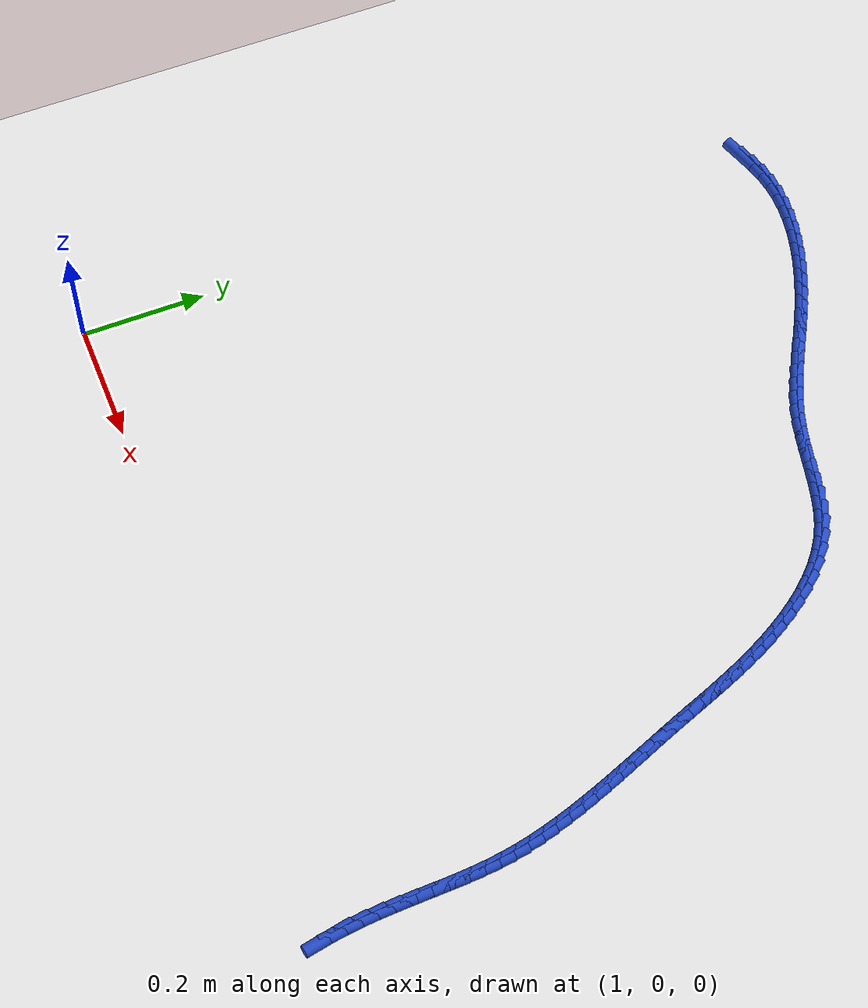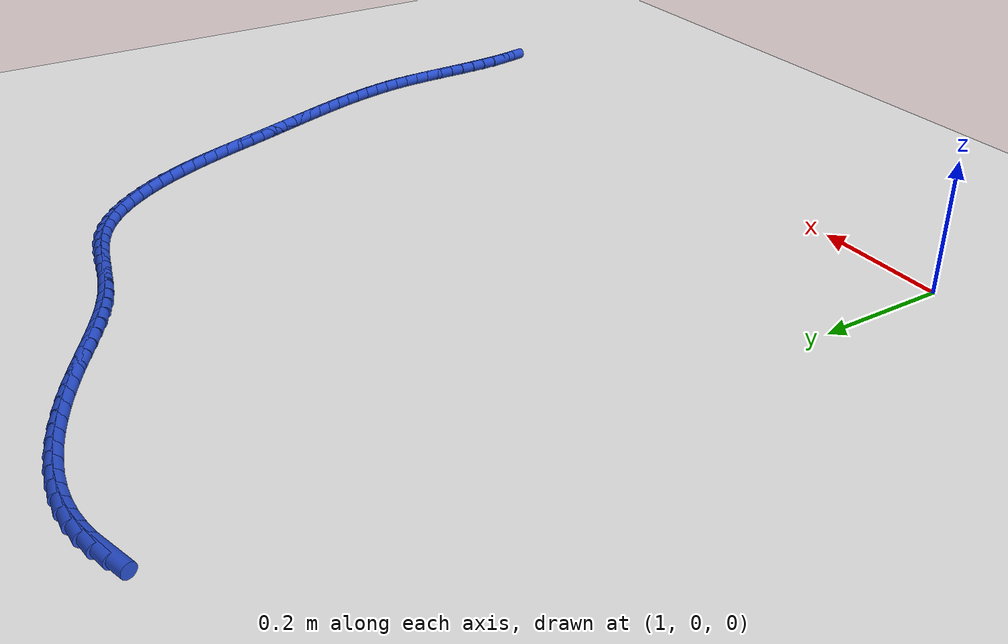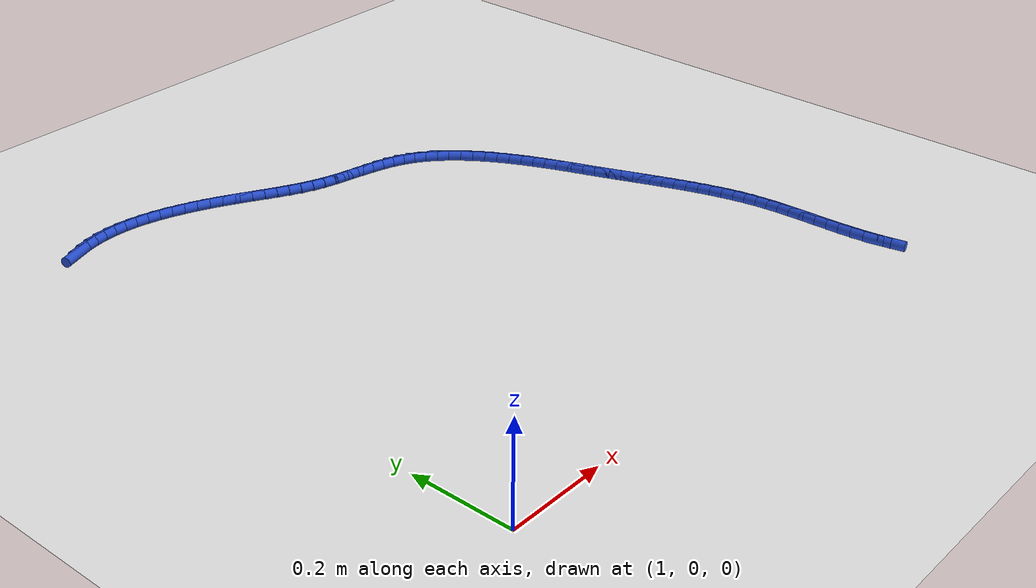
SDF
<sdf version="1.6">
 <world name="default">
  <model name="ground_plane">
   <static>1</static>
   <link name="link">
    <collision name="collision">
     <geometry><plane><normal>0 0 1</normal><size>100 100</size></plane></geometry>
     <surface><friction><ode><mu>100</mu><mu2>50</mu2></ode></friction></surface>
    </collision>
    <visual name="visual">
     <cast_shadows>0</cast_shadows>
     <geometry><plane><normal>0 0 1</normal><size>100 100</size></plane></geometry>
     <material>
      <script><uri>file://media/materials/scripts/gazebo.material</uri><name>Gazebo/WhiteGlow</name></script>
     </material>
    </visual>
   </link>
  </model>
  <model name="line">
   <link name="link_68">
    <pose>1.0712664505683156 1.1156663409639707 0.01 0 1.57 0.3250798193167384</pose>
    <collision name="collision">
     <geometry><cylinder><radius>0.01</radius><length>0.08</length></cylinder></geometry>
    </collision>
    <visual name="visual">
     <material>
      <script><name>Gazebo/Blue</name><uri>file://media/materials/scripts/gazebo.material</uri></script>
     </material>
     <geometry><cylinder><radius>0.01</radius><length>0.08</length></cylinder></geometry>
    </visual>
   </link>
   <link name="link_69">
    <pose>1.0942441320100968 1.1234106615126367 0.01 0 1.57 0.24602648844768754</pose>
    <collision name="collision">
     <geometry><cylinder><radius>0.01</radius><length>0.08</length></cylinder></geometry>
    </collision>
    <visual name="visual">
     <material>
      <script><name>Gazebo/Blue</name><uri>file://media/materials/scripts/gazebo.material</uri></script>
     </material>
     <geometry><cylinder><radius>0.01</radius><length>0.08</length></cylinder></geometry>
    </visual>
   </link>
   <link name="link_70">
    <pose>1.1175309115972816 1.1292582887191789 0.01 0 1.57 0.15348852929266052</pose>
    <collision name="collision">
     <geometry><cylinder><radius>0.01</radius><length>0.08</length></cylinder></geometry>
    </collision>
    <visual name="visual">
     <material>
      <script><name>Gazebo/Blue</name><uri>file://media/materials/scripts/gazebo.material</uri></script>
     </material>
     <geometry><cylinder><radius>0.01</radius><length>0.08</length></cylinder></geometry>
    </visual>
   </link>
   <link name="link_71">
    <pose>1.1411621309180935 1.132914164269768 0.01 0 1.57 0.05758001351447266</pose>
    <collision name="collision">
     <geometry><cylinder><radius>0.01</radius><length>0.08</length></cylinder></geometry>
    </collision>
    <visual name="visual">
     <material>
      <script><name>Gazebo/Blue</name><uri>file://media/materials/scripts/gazebo.material</uri></script>
     </material>
     <geometry><cylinder><radius>0.01</radius><length>0.08</length></cylinder></geometry>
    </visual>
   </link>
   <link name="link_72">
    <pose>1.1651188755700714 1.1342951204554188 0.01 0 1.57 -0.030110901097796038</pose>
    <collision name="collision">
     <geometry><cylinder><radius>0.01</radius><length>0.08</length></cylinder></geometry>
    </collision>
    <visual name="visual">
     <material>
      <script><name>Gazebo/Blue</name><uri>file://media/materials/scripts/gazebo.material</uri></script>
     </material>
     <geometry><cylinder><radius>0.01</radius><length>0.08</length></cylinder></geometry>
    </visual>
   </link>
   <link name="link_73">
    <pose>1.1893186694531075 1.1335662225528327 0.01 0 1.57 -0.10876103123228287</pose>
    <collision name="collision">
     <geometry><cylinder><radius>0.01</radius><length>0.08</length></cylinder></geometry>
    </collision>
    <visual name="visual">
     <material>
      <script><name>Gazebo/Blue</name><uri>file://media/materials/scripts/gazebo.material</uri></script>
     </material>
     <geometry><cylinder><radius>0.01</radius><length>0.08</length></cylinder></geometry>
    </visual>
   </link>
   <link name="link_74">
    <pose>1.2136754192585035 1.1309066624357098 0.01 0 1.57 -0.17865040572887414</pose>
    <collision name="collision">
     <geometry><cylinder><radius>0.01</radius><length>0.08</length></cylinder></geometry>
    </collision>
    <visual name="visual">
     <material>
      <script><name>Gazebo/Blue</name><uri>file://media/materials/scripts/gazebo.material</uri></script>
     </material>
     <geometry><cylinder><radius>0.01</radius><length>0.08</length></cylinder></geometry>
    </visual>
   </link>
   <link name="link_75">
    <pose>1.2381030316775643 1.1264956319777528 0.01 0 1.57 -0.24035519986137915</pose>
    <collision name="collision">
     <geometry><cylinder><radius>0.01</radius><length>0.08</length></cylinder></geometry>
    </collision>
    <visual name="visual">
     <material>
      <script><name>Gazebo/Blue</name><uri>file://media/materials/scripts/gazebo.material</uri></script>
     </material>
     <geometry><cylinder><radius>0.01</radius><length>0.08</length></cylinder></geometry>
    </visual>
   </link>
   <link name="link_76">
    <pose>1.262515413401593 1.1205123230526615 0.01 0 1.57 -0.29458897683144164</pose>
    <collision name="collision">
     <geometry><cylinder><radius>0.01</radius><length>0.08</length></cylinder></geometry>
    </collision>
    <visual name="visual">
     <material>
      <script><name>Gazebo/Blue</name><uri>file://media/materials/scripts/gazebo.material</uri></script>
     </material>
     <geometry><cylinder><radius>0.01</radius><length>0.08</length></cylinder></geometry>
    </visual>
   </link>
   <link name="link_77">
    <pose>1.2868264711218944 1.1131359275341384 0.01 0 1.57 -0.3420936673481005</pose>
    <collision name="collision">
     <geometry><cylinder><radius>0.01</radius><length>0.08</length></cylinder></geometry>
    </collision>
    <visual name="visual">
     <material>
      <script><name>Gazebo/Blue</name><uri>file://media/materials/scripts/gazebo.material</uri></script>
     </material>
     <geometry><cylinder><radius>0.01</radius><length>0.08</length></cylinder></geometry>
    </visual>
   </link>
   <link name="link_78">
    <pose>1.310950111529771 1.1045456372958835 0.01 0 1.57 -0.3835728216554698</pose>
    <collision name="collision">
     <geometry><cylinder><radius>0.01</radius><length>0.08</length></cylinder></geometry>
    </collision>
    <visual name="visual">
     <material>
      <script><name>Gazebo/Blue</name><uri>file://media/materials/scripts/gazebo.material</uri></script>
     </material>
     <geometry><cylinder><radius>0.01</radius><length>0.08</length></cylinder></geometry>
    </visual>
   </link>
   <link name="link_79">
    <pose>1.3348002413165274 1.0949206442115993 0.01 0 1.57 -0.41965496621604886</pose>
    <collision name="collision">
     <geometry><cylinder><radius>0.01</radius><length>0.08</length></cylinder></geometry>
    </collision>
    <visual name="visual">
     <material>
      <script><name>Gazebo/Blue</name><uri>file://media/materials/scripts/gazebo.material</uri></script>
     </material>
     <geometry><cylinder><radius>0.01</radius><length>0.08</length></cylinder></geometry>
    </visual>
   </link>
   <link name="link_80">
    <pose>1.3582907671734672 1.084440140154987 0.01 0 1.57 -0.4508757748941615</pose>
    <collision name="collision">
     <geometry><cylinder><radius>0.01</radius><length>0.08</length></cylinder></geometry>
    </collision>
    <visual name="visual">
     <material>
      <script><name>Gazebo/Blue</name><uri>file://media/materials/scripts/gazebo.material</uri></script>
     </material>
     <geometry><cylinder><radius>0.01</radius><length>0.08</length></cylinder></geometry>
    </visual>
   </link>
   <link name="link_81">
    <pose>1.3813355957918936 1.0732833169997473 0.01 0 1.57 -0.47716823262782676</pose>
    <collision name="collision">
     <geometry><cylinder><radius>0.01</radius><length>0.08</length></cylinder></geometry>
    </collision>
    <visual name="visual">
     <material>
      <script><name>Gazebo/Blue</name><uri>file://media/materials/scripts/gazebo.material</uri></script>
     </material>
     <geometry><cylinder><radius>0.01</radius><length>0.08</length></cylinder></geometry>
    </visual>
   </link>
   <link name="link_82">
    <pose>1.4038682327131033 1.0616335639073884 0.01 0 1.57 -0.4948079234408876</pose>
    <collision name="collision">
     <geometry><cylinder><radius>0.01</radius><length>0.08</length></cylinder></geometry>
    </collision>
    <visual name="visual">
     <material>
      <script><name>Gazebo/Blue</name><uri>file://media/materials/scripts/gazebo.material</uri></script>
     </material>
     <geometry><cylinder><radius>0.01</radius><length>0.08</length></cylinder></geometry>
    </visual>
   </link>
   <link name="link_83">
    <pose>1.4259726121689777 1.049706485833155 0.01 0 1.57 -0.5017004527025022</pose>
    <collision name="collision">
     <geometry><cylinder><radius>0.01</radius><length>0.08</length></cylinder></geometry>
    </collision>
    <visual name="visual">
     <material>
      <script><name>Gazebo/Blue</name><uri>file://media/materials/scripts/gazebo.material</uri></script>
     </material>
     <geometry><cylinder><radius>0.01</radius><length>0.08</length></cylinder></geometry>
    </visual>
   </link>
   <link name="link_84">
    <pose>1.4478023384665428 1.037732608268805 0.01 0 1.57 -0.4975260520369259</pose>
    <collision name="collision">
     <geometry><cylinder><radius>0.01</radius><length>0.08</length></cylinder></geometry>
    </collision>
    <visual name="visual">
     <material>
      <script><name>Gazebo/Blue</name><uri>file://media/materials/scripts/gazebo.material</uri></script>
     </material>
     <geometry><cylinder><radius>0.01</radius><length>0.08</length></cylinder></geometry>
    </visual>
   </link>
   <link name="link_85">
    <pose>1.469511395687868 1.0259425380386813 0.01 0 1.57 -0.48203657769170266</pose>
    <collision name="collision">
     <geometry><cylinder><radius>0.01</radius><length>0.08</length></cylinder></geometry>
    </collision>
    <visual name="visual">
     <material>
      <script><name>Gazebo/Blue</name><uri>file://media/materials/scripts/gazebo.material</uri></script>
     </material>
     <geometry><cylinder><radius>0.01</radius><length>0.08</length></cylinder></geometry>
    </visual>
   </link>
   <link name="link_86">
    <pose>1.4912537679150244 1.0145668819671279 0.01 0 1.57 -0.45506746914877116</pose>
    <collision name="collision">
     <geometry><cylinder><radius>0.01</radius><length>0.08</length></cylinder></geometry>
    </collision>
    <visual name="visual">
     <material>
      <script><name>Gazebo/Blue</name><uri>file://media/materials/scripts/gazebo.material</uri></script>
     </material>
     <geometry><cylinder><radius>0.01</radius><length>0.08</length></cylinder></geometry>
    </visual>
   </link>
   <link name="link_87">
    <pose>1.5131834392300825 1.0038362468784885 0.01 0 1.57 -0.4166035745356155</pose>
    <collision name="collision">
     <geometry><cylinder><radius>0.01</radius><length>0.08</length></cylinder></geometry>
    </collision>
    <visual name="visual">
     <material>
      <script><name>Gazebo/Blue</name><uri>file://media/materials/scripts/gazebo.material</uri></script>
     </material>
     <geometry><cylinder><radius>0.01</radius><length>0.08</length></cylinder></geometry>
    </visual>
   </link>
   <link name="link_88">
    <pose>1.5354543937151124 0.9939812395971076 0.01 0 1.57 -0.36688810264493504</pose>
    <collision name="collision">
     <geometry><cylinder><radius>0.01</radius><length>0.08</length></cylinder></geometry>
    </collision>
    <visual name="visual">
     <material>
      <script><name>Gazebo/Blue</name><uri>file://media/materials/scripts/gazebo.material</uri></script>
     </material>
     <geometry><cylinder><radius>0.01</radius><length>0.08</length></cylinder></geometry>
    </visual>
   </link>
   <link name="link_89">
    <pose>1.5582206154521852 0.9852324669473287 0.01 0 1.57 -0.3068984192505896</pose>
    <collision name="collision">
     <geometry><cylinder><radius>0.01</radius><length>0.08</length></cylinder></geometry>
    </collision>
    <visual name="visual">
     <material>
      <script><name>Gazebo/Blue</name><uri>file://media/materials/scripts/gazebo.material</uri></script>
     </material>
     <geometry><cylinder><radius>0.01</radius><length>0.08</length></cylinder></geometry>
    </visual>
   </link>
   <link name="link_90">
    <pose>1.5816319221640303 0.9778131650292858 0.01 0 1.57 -0.25119528374120437</pose>
    <collision name="collision">
     <geometry><cylinder><radius>0.01</radius><length>0.08</length></cylinder></geometry>
    </collision>
    <visual name="visual">
     <material>
      <script><name>Gazebo/Blue</name><uri>file://media/materials/scripts/gazebo.material</uri></script>
     </material>
     <geometry><cylinder><radius>0.01</radius><length>0.08</length></cylinder></geometry>
    </visual>
   </link>
   <link name="link_91">
    <pose>1.6056677753008641 0.9716451919294139 0.01 0 1.57 -0.21749199049007928</pose>
    <collision name="collision">
     <geometry><cylinder><radius>0.01</radius><length>0.08</length></cylinder></geometry>
    </collision>
    <visual name="visual">
     <material>
      <script><name>Gazebo/Blue</name><uri>file://media/materials/scripts/gazebo.material</uri></script>
     </material>
     <geometry><cylinder><radius>0.01</radius><length>0.08</length></cylinder></geometry>
    </visual>
   </link>
   <link name="link_92">
    <pose>1.6300813581539604 0.9662500960708937 0.01 0 1.57 -0.20610440534708643</pose>
    <collision name="collision">
     <geometry><cylinder><radius>0.01</radius><length>0.08</length></cylinder></geometry>
    </collision>
    <visual name="visual">
     <material>
      <script><name>Gazebo/Blue</name><uri>file://media/materials/scripts/gazebo.material</uri></script>
     </material>
     <geometry><cylinder><radius>0.01</radius><length>0.08</length></cylinder></geometry>
    </visual>
   </link>
   <link name="link_93">
    <pose>1.6546102199841328 0.9611217676464349 0.01 0 1.57 -0.21669500801585503</pose>
    <collision name="collision">
     <geometry><cylinder><radius>0.01</radius><length>0.08</length></cylinder></geometry>
    </collision>
    <visual name="visual">
     <material>
      <script><name>Gazebo/Blue</name><uri>file://media/materials/scripts/gazebo.material</uri></script>
     </material>
     <geometry><cylinder><radius>0.01</radius><length>0.08</length></cylinder></geometry>
    </visual>
   </link>
   <link name="link_94">
    <pose>1.6789919100521908 0.955754096848747 0.01 0 1.57 -0.2496886065724368</pose>
    <collision name="collision">
     <geometry><cylinder><radius>0.01</radius><length>0.08</length></cylinder></geometry>
    </collision>
    <visual name="visual">
     <material>
      <script><name>Gazebo/Blue</name><uri>file://media/materials/scripts/gazebo.material</uri></script>
     </material>
     <geometry><cylinder><radius>0.01</radius><length>0.08</length></cylinder></geometry>
    </visual>
   </link>
   <link name="link_95">
    <pose>1.702963977618949 0.9496409738705404 0.01 0 1.57 -0.3061439187938405</pose>
    <collision name="collision">
     <geometry><cylinder><radius>0.01</radius><length>0.08</length></cylinder></geometry>
    </collision>
    <visual name="visual">
     <material>
      <script><name>Gazebo/Blue</name><uri>file://media/materials/scripts/gazebo.material</uri></script>
     </material>
     <geometry><cylinder><radius>0.01</radius><length>0.08</length></cylinder></geometry>
    </visual>
   </link>
   <link name="link_96">
    <pose>1.7262639719452169 0.9422762889045252 0.01 0 1.57 -0.3872782358203416</pose>
    <collision name="collision">
     <geometry><cylinder><radius>0.01</radius><length>0.08</length></cylinder></geometry>
    </collision>
    <visual name="visual">
     <material>
      <script><name>Gazebo/Blue</name><uri>file://media/materials/scripts/gazebo.material</uri></script>
     </material>
     <geometry><cylinder><radius>0.01</radius><length>0.08</length></cylinder></geometry>
    </visual>
   </link>
   <link name="link_97">
    <pose>1.7486294422918072 0.9331539321434106 0.01 0 1.57 -0.4916624338881743</pose>
    <collision name="collision">
     <geometry><cylinder><radius>0.01</radius><length>0.08</length></cylinder></geometry>
    </collision>
    <visual name="visual">
     <material>
      <script><name>Gazebo/Blue</name><uri>file://media/materials/scripts/gazebo.material</uri></script>
     </material>
     <geometry><cylinder><radius>0.01</radius><length>0.08</length></cylinder></geometry>
    </visual>
   </link>
   <link name="link_98">
    <pose>1.7698146729796174 0.9218087020524857 0.01 0 1.57 -0.5984293145473905</pose>
    <collision name="collision">
     <geometry><cylinder><radius>0.01</radius><length>0.08</length></cylinder></geometry>
    </collision>
    <visual name="visual">
     <material>
      <script><name>Gazebo/Blue</name><uri>file://media/materials/scripts/gazebo.material</uri></script>
     </material>
     <geometry><cylinder><radius>0.01</radius><length>0.08</length></cylinder></geometry>
    </visual>
   </link>
   <link name="link_99">
    <pose>1.7897533202260003 0.908213865461985 0.01 0 1.57 -0.6945107123632954</pose>
    <collision name="collision">
     <geometry><cylinder><radius>0.01</radius><length>0.08</length></cylinder></geometry>
    </collision>
    <visual name="visual">
     <material>
      <script><name>Gazebo/Blue</name><uri>file://media/materials/scripts/gazebo.material</uri></script>
     </material>
     <geometry><cylinder><radius>0.01</radius><length>0.08</length></cylinder></geometry>
    </visual>
   </link>
   <link name="link_100">
    <pose>1.8084879442870183 0.8926089013386769 0.01 0 1.57 -0.779594368369742</pose>
    <collision name="collision">
     <geometry><cylinder><radius>0.01</radius><length>0.08</length></cylinder></geometry>
    </collision>
    <visual name="visual">
     <material>
      <script><name>Gazebo/Blue</name><uri>file://media/materials/scripts/gazebo.material</uri></script>
     </material>
     <geometry><cylinder><radius>0.01</radius><length>0.08</length></cylinder></geometry>
    </visual>
   </link>
   <link name="link_101">
    <pose>1.8260626373001678 0.8752370332802363 0.01 0 1.57 -0.854211289643787</pose>
    <collision name="collision">
     <geometry><cylinder><radius>0.01</radius><length>0.08</length></cylinder></geometry>
    </collision>
    <visual name="visual">
     <material>
      <script><name>Gazebo/Blue</name><uri>file://media/materials/scripts/gazebo.material</uri></script>
     </material>
     <geometry><cylinder><radius>0.01</radius><length>0.08</length></cylinder></geometry>
    </visual>
   </link>
   <link name="link_102">
    <pose>1.8425214914029446 0.8563414848843386 0.01 0 1.57 -0.9192521079763318</pose>
    <collision name="collision">
     <geometry><cylinder><radius>0.01</radius><length>0.08</length></cylinder></geometry>
    </collision>
    <visual name="visual">
     <material>
      <script><name>Gazebo/Blue</name><uri>file://media/materials/scripts/gazebo.material</uri></script>
     </material>
     <geometry><cylinder><radius>0.01</radius><length>0.08</length></cylinder></geometry>
    </visual>
   </link>
   <link name="link_103">
    <pose>1.8579085987328439 0.8361654797486576 0.01 0 1.57 -0.9757356846833288</pose>
    <collision name="collision">
     <geometry><cylinder><radius>0.01</radius><length>0.08</length></cylinder></geometry>
    </collision>
    <visual name="visual">
     <material>
      <script><name>Gazebo/Blue</name><uri>file://media/materials/scripts/gazebo.material</uri></script>
     </material>
     <geometry><cylinder><radius>0.01</radius><length>0.08</length></cylinder></geometry>
    </visual>
   </link>
   <link name="link_104">
    <pose>1.8722680514273615 0.814952241470868 0.01 0 1.57 -1.0246650800008774</pose>
    <collision name="collision">
     <geometry><cylinder><radius>0.01</radius><length>0.08</length></cylinder></geometry>
    </collision>
    <visual name="visual">
     <material>
      <script><name>Gazebo/Blue</name><uri>file://media/materials/scripts/gazebo.material</uri></script>
     </material>
     <geometry><cylinder><radius>0.01</radius><length>0.08</length></cylinder></geometry>
    </visual>
   </link>
   <link name="link_105">
    <pose>1.8856439416239943 0.7929449936486459 0.01 0 1.57 -1.0669496058155192</pose>
    <collision name="collision">
     <geometry><cylinder><radius>0.01</radius><length>0.08</length></cylinder></geometry>
    </collision>
    <visual name="visual">
     <material>
      <script><name>Gazebo/Blue</name><uri>file://media/materials/scripts/gazebo.material</uri></script>
     </material>
     <geometry><cylinder><radius>0.01</radius><length>0.08</length></cylinder></geometry>
    </visual>
   </link>
   <link name="link_106">
    <pose>1.898080361460237 0.7703869598796651 0.01 0 1.57 -1.1033687695884133</pose>
    <collision name="collision">
     <geometry><cylinder><radius>0.01</radius><length>0.08</length></cylinder></geometry>
    </collision>
    <visual name="visual">
     <material>
      <script><name>Gazebo/Blue</name><uri>file://media/materials/scripts/gazebo.material</uri></script>
     </material>
     <geometry><cylinder><radius>0.01</radius><length>0.08</length></cylinder></geometry>
    </visual>
   </link>
   <link name="link_107">
    <pose>1.9096214030735854 0.7475213637616004 0.01 0 1.57 -1.1345565897966114</pose>
    <collision name="collision">
     <geometry><cylinder><radius>0.01</radius><length>0.08</length></cylinder></geometry>
    </collision>
    <visual name="visual">
     <material>
      <script><name>Gazebo/Blue</name><uri>file://media/materials/scripts/gazebo.material</uri></script>
     </material>
     <geometry><cylinder><radius>0.01</radius><length>0.08</length></cylinder></geometry>
    </visual>
   </link>
   <link name="link_108">
    <pose>1.920313137088414 0.7245873232844157 0.01 0 1.57 -1.1607786446294521</pose>
    <collision name="collision">
     <geometry><cylinder><radius>0.01</radius><length>0.08</length></cylinder></geometry>
    </collision>
    <visual name="visual">
     <material>
      <script><name>Gazebo/Blue</name><uri>file://media/materials/scripts/gazebo.material</uri></script>
     </material>
     <geometry><cylinder><radius>0.01</radius><length>0.08</length></cylinder></geometry>
    </visual>
   </link>
   <link name="link_109">
    <pose>1.9302592731135637 0.7017043483367138 0.01 0 1.57 -1.1816275855840257</pose>
    <collision name="collision">
     <geometry><cylinder><radius>0.01</radius><length>0.08</length></cylinder></geometry>
    </collision>
    <visual name="visual">
     <material>
      <script><name>Gazebo/Blue</name><uri>file://media/materials/scripts/gazebo.material</uri></script>
     </material>
     <geometry><cylinder><radius>0.01</radius><length>0.08</length></cylinder></geometry>
    </visual>
   </link>
   <link name="link_110">
    <pose>1.9396288345193227 0.6788564145836589 0.01 0 1.57 -1.1966843605266664</pose>
    <collision name="collision">
     <geometry><cylinder><radius>0.01</radius><length>0.08</length></cylinder></geometry>
    </collision>
    <visual name="visual">
     <material>
      <script><name>Gazebo/Blue</name><uri>file://media/materials/scripts/gazebo.material</uri></script>
     </material>
     <geometry><cylinder><radius>0.01</radius><length>0.08</length></cylinder></geometry>
    </visual>
   </link>
   <link name="link_111">
    <pose>1.9485943656409788 0.6560201912476902 0.01 0 1.57 -1.2056672426857133</pose>
    <collision name="collision">
     <geometry><cylinder><radius>0.01</radius><length>0.08</length></cylinder></geometry>
    </collision>
    <visual name="visual">
     <material>
      <script><name>Gazebo/Blue</name><uri>file://media/materials/scripts/gazebo.material</uri></script>
     </material>
     <geometry><cylinder><radius>0.01</radius><length>0.08</length></cylinder></geometry>
    </visual>
   </link>
   <link name="link_112">
    <pose>1.9573284108138211 0.6331723475512486 0.01 0 1.57 -1.2084269712204556</pose>
    <collision name="collision">
     <geometry><cylinder><radius>0.01</radius><length>0.08</length></cylinder></geometry>
    </collision>
    <visual name="visual">
     <material>
      <script><name>Gazebo/Blue</name><uri>file://media/materials/scripts/gazebo.material</uri></script>
     </material>
     <geometry><cylinder><radius>0.01</radius><length>0.08</length></cylinder></geometry>
    </visual>
   </link>
   <link name="link_113">
    <pose>1.966003514373138 0.6102895527167738 0.01 0 1.57 -1.2049454268915045</pose>
    <collision name="collision">
     <geometry><cylinder><radius>0.01</radius><length>0.08</length></cylinder></geometry>
    </collision>
    <visual name="visual">
     <material>
      <script><name>Gazebo/Blue</name><uri>file://media/materials/scripts/gazebo.material</uri></script>
     </material>
     <geometry><cylinder><radius>0.01</radius><length>0.08</length></cylinder></geometry>
    </visual>
   </link>
   <link name="link_114">
    <pose>1.9747921826830475 0.587348479468829 0.01 0 1.57 -1.197518168548976</pose>
    <collision name="collision">
     <geometry><cylinder><radius>0.01</radius><length>0.08</length></cylinder></geometry>
    </collision>
    <visual name="visual">
     <material>
      <script><name>Gazebo/Blue</name><uri>file://media/materials/scripts/gazebo.material</uri></script>
     </material>
     <geometry><cylinder><radius>0.01</radius><length>0.08</length></cylinder></geometry>
    </visual>
   </link>
   <link name="link_115">
    <pose>1.9838065890937835 0.5643313651101537 0.01 0 1.57 -1.1928291102332442</pose>
    <collision name="collision">
     <geometry><cylinder><radius>0.01</radius><length>0.08</length></cylinder></geometry>
    </collision>
    <visual name="visual">
     <material>
      <script><name>Gazebo/Blue</name><uri>file://media/materials/scripts/gazebo.material</uri></script>
     </material>
     <geometry><cylinder><radius>0.01</radius><length>0.08</length></cylinder></geometry>
    </visual>
   </link>
   <link name="link_116">
    <pose>1.9929762652477412 0.5412372921828792 0.01 0 1.57 -1.192057108484416</pose>
    <collision name="collision">
     <geometry><cylinder><radius>0.01</radius><length>0.08</length></cylinder></geometry>
    </collision>
    <visual name="visual">
     <material>
      <script><name>Gazebo/Blue</name><uri>file://media/materials/scripts/gazebo.material</uri></script>
     </material>
     <geometry><cylinder><radius>0.01</radius><length>0.08</length></cylinder></geometry>
    </visual>
   </link>
   <link name="link_117">
    <pose>2.0021963144150554 0.5180685185946059 0.01 0 1.57 -1.1951570094020658</pose>
    <collision name="collision">
     <geometry><cylinder><radius>0.01</radius><length>0.08</length></cylinder></geometry>
    </collision>
    <visual name="visual">
     <material>
      <script><name>Gazebo/Blue</name><uri>file://media/materials/scripts/gazebo.material</uri></script>
     </material>
     <geometry><cylinder><radius>0.01</radius><length>0.08</length></cylinder></geometry>
    </visual>
   </link>
   <link name="link_118">
    <pose>2.01136183986586 0.4948273022529354 0.01 0 1.57 -1.2021218017035942</pose>
    <collision name="collision">
     <geometry><cylinder><radius>0.01</radius><length>0.08</length></cylinder></geometry>
    </collision>
    <visual name="visual">
     <material>
      <script><name>Gazebo/Blue</name><uri>file://media/materials/scripts/gazebo.material</uri></script>
     </material>
     <geometry><cylinder><radius>0.01</radius><length>0.08</length></cylinder></geometry>
    </visual>
   </link>
   <link name="link_119">
    <pose>2.020367944870292 0.47151590106546865 0.01 0 1.57 -1.2129807428063628</pose>
    <collision name="collision">
     <geometry><cylinder><radius>0.01</radius><length>0.08</length></cylinder></geometry>
    </collision>
    <visual name="visual">
     <material>
      <script><name>Gazebo/Blue</name><uri>file://media/materials/scripts/gazebo.material</uri></script>
     </material>
     <geometry><cylinder><radius>0.01</radius><length>0.08</length></cylinder></geometry>
    </visual>
   </link>
   <link name="link_120">
    <pose>2.0291097326984846 0.4481365729398063 0.01 0 1.57 -1.2277965718522776</pose>
    <collision name="collision">
     <geometry><cylinder><radius>0.01</radius><length>0.08</length></cylinder></geometry>
    </collision>
    <visual name="visual">
     <material>
      <script><name>Gazebo/Blue</name><uri>file://media/materials/scripts/gazebo.material</uri></script>
     </material>
     <geometry><cylinder><radius>0.01</radius><length>0.08</length></cylinder></geometry>
    </visual>
   </link>
   <link name="link_121">
    <pose>2.0374823066205745 0.4246915757835494 0.01 0 1.57 -1.2466615281822164</pose>
    <collision name="collision">
     <geometry><cylinder><radius>0.01</radius><length>0.08</length></cylinder></geometry>
    </collision>
    <visual name="visual">
     <material>
      <script><name>Gazebo/Blue</name><uri>file://media/materials/scripts/gazebo.material</uri></script>
     </material>
     <geometry><cylinder><radius>0.01</radius><length>0.08</length></cylinder></geometry>
    </visual>
   </link>
   <link name="link_122">
    <pose>2.045380769906697 0.4011831675042987 0.01 0 1.57 -1.269691718750532</pose>
    <collision name="collision">
     <geometry><cylinder><radius>0.01</radius><length>0.08</length></cylinder></geometry>
    </collision>
    <visual name="visual">
     <material>
      <script><name>Gazebo/Blue</name><uri>file://media/materials/scripts/gazebo.material</uri></script>
     </material>
     <geometry><cylinder><radius>0.01</radius><length>0.08</length></cylinder></geometry>
    </visual>
   </link>
   <link name="link_123">
    <pose>2.052700225826986 0.37761360600965566 0.01 0 1.57 -1.2970192175244462</pose>
    <collision name="collision">
     <geometry><cylinder><radius>0.01</radius><length>0.08</length></cylinder></geometry>
    </collision>
    <visual name="visual">
     <material>
      <script><name>Gazebo/Blue</name><uri>file://media/materials/scripts/gazebo.material</uri></script>
     </material>
     <geometry><cylinder><radius>0.01</radius><length>0.08</length></cylinder></geometry>
    </visual>
   </link>
   <link name="link_124">
    <pose>2.059335777651577 0.35398514920722096 0.01 0 1.57 -1.328781157510224</pose>
    <collision name="collision">
     <geometry><cylinder><radius>0.01</radius><length>0.08</length></cylinder></geometry>
    </collision>
    <visual name="visual">
     <material>
      <script><name>Gazebo/Blue</name><uri>file://media/materials/scripts/gazebo.material</uri></script>
     </material>
     <geometry><cylinder><radius>0.01</radius><length>0.08</length></cylinder></geometry>
    </visual>
   </link>
   <link name="link_125">
    <pose>2.0651825286506065 0.3303000550045958 0.01 0 1.57 -1.3651050411773624</pose>
    <collision name="collision">
     <geometry><cylinder><radius>0.01</radius><length>0.08</length></cylinder></geometry>
    </collision>
    <visual name="visual">
     <material>
      <script><name>Gazebo/Blue</name><uri>file://media/materials/scripts/gazebo.material</uri></script>
     </material>
     <geometry><cylinder><radius>0.01</radius><length>0.08</length></cylinder></geometry>
    </visual>
   </link>
   <link name="link_126">
    <pose>2.070135582094208 0.30656058130938046 0.01 0 1.57 -1.4060881309028685</pose>
    <collision name="collision">
     <geometry><cylinder><radius>0.01</radius><length>0.08</length></cylinder></geometry>
    </collision>
    <visual name="visual">
     <material>
      <script><name>Gazebo/Blue</name><uri>file://media/materials/scripts/gazebo.material</uri></script>
     </material>
     <geometry><cylinder><radius>0.01</radius><length>0.08</length></cylinder></geometry>
    </visual>
   </link>
   <link name="link_127">
    <pose>2.0740900783639047 0.28276898324844946 0.01 0 1.57 -1.4489964734234784</pose>
    <collision name="collision">
     <geometry><cylinder><radius>0.01</radius><length>0.08</length></cylinder></geometry>
    </collision>
    <visual name="visual">
     <material>
      <script><name>Gazebo/Blue</name><uri>file://media/materials/scripts/gazebo.material</uri></script>
     </material>
     <geometry><cylinder><radius>0.01</radius><length>0.08</length></cylinder></geometry>
    </visual>
   </link>
   <link name="link_128">
    <pose>2.077009033775273 0.2589224300577125 0.01 0 1.57 -1.4851060373432163</pose>
    <collision name="collision">
     <geometry><cylinder><radius>0.01</radius><length>0.08</length></cylinder></geometry>
    </collision>
    <visual name="visual">
     <material>
      <script><name>Gazebo/Blue</name><uri>file://media/materials/scripts/gazebo.material</uri></script>
     </material>
     <geometry><cylinder><radius>0.01</radius><length>0.08</length></cylinder></geometry>
    </visual>
   </link>
   <link name="link_129">
    <pose>2.0790637726553576 0.23500248261574502 0.01 0 1.57 -1.512495286965432</pose>
    <collision name="collision">
     <geometry><cylinder><radius>0.01</radius><length>0.08</length></cylinder></geometry>
    </collision>
    <visual name="visual">
     <material>
      <script><name>Gazebo/Blue</name><uri>file://media/materials/scripts/gazebo.material</uri></script>
     </material>
     <geometry><cylinder><radius>0.01</radius><length>0.08</length></cylinder></geometry>
    </visual>
   </link>
   <link name="link_130">
    <pose>2.0804654468919237 0.21098771755296483 0.01 0 1.57 -1.5310443214268323</pose>
    <collision name="collision">
     <geometry><cylinder><radius>0.01</radius><length>0.08</length></cylinder></geometry>
    </collision>
    <visual name="visual">
     <material>
      <script><name>Gazebo/Blue</name><uri>file://media/materials/scripts/gazebo.material</uri></script>
     </material>
     <geometry><cylinder><radius>0.01</radius><length>0.08</length></cylinder></geometry>
    </visual>
   </link>
   <link name="link_131">
    <pose>2.0814252083727327 0.18685671149978916 0.01 0 1.57 -1.5407666031443732</pose>
    <collision name="collision">
     <geometry><cylinder><radius>0.01</radius><length>0.08</length></cylinder></geometry>
    </collision>
    <visual name="visual">
     <material>
      <script><name>Gazebo/Blue</name><uri>file://media/materials/scripts/gazebo.material</uri></script>
     </material>
     <geometry><cylinder><radius>0.01</radius><length>0.08</length></cylinder></geometry>
    </visual>
   </link>
   <link name="link_132">
    <pose>2.0821542089855503 0.16258804108663666 0.01 0 1.57 -1.5417640959681211</pose>
    <collision name="collision">
     <geometry><cylinder><radius>0.01</radius><length>0.08</length></cylinder></geometry>
    </collision>
    <visual name="visual">
     <material>
      <script><name>Gazebo/Blue</name><uri>file://media/materials/scripts/gazebo.material</uri></script>
     </material>
     <geometry><cylinder><radius>0.01</radius><length>0.08</length></cylinder></geometry>
    </visual>
   </link>
   <link name="link_133">
    <pose>2.08286360061814 0.13816028294392466 0.01 0 1.57 -1.5342016225318746</pose>
    <collision name="collision">
     <geometry><cylinder><radius>0.01</radius><length>0.08</length></cylinder></geometry>
    </collision>
    <visual name="visual">
     <material>
      <script><name>Gazebo/Blue</name><uri>file://media/materials/scripts/gazebo.material</uri></script>
     </material>
     <geometry><cylinder><radius>0.01</radius><length>0.08</length></cylinder></geometry>
    </visual>
   </link>
   <link name="link_134">
    <pose>2.083764535158264 0.11355201370207083 0.01 0 1.57 -1.5183005225471242</pose>
    <collision name="collision">
     <geometry><cylinder><radius>0.01</radius><length>0.08</length></cylinder></geometry>
    </collision>
    <visual name="visual">
     <material>
      <script><name>Gazebo/Blue</name><uri>file://media/materials/scripts/gazebo.material</uri></script>
     </material>
     <geometry><cylinder><radius>0.01</radius><length>0.08</length></cylinder></geometry>
    </visual>
   </link>
   <link name="link_135">
    <pose>2.085068164493688 0.08874180999149255 0.01 0 1.57 -1.494349384594232</pose>
    <collision name="collision">
     <geometry><cylinder><radius>0.01</radius><length>0.08</length></cylinder></geometry>
    </collision>
    <visual name="visual">
     <material>
      <script><name>Gazebo/Blue</name><uri>file://media/materials/scripts/gazebo.material</uri></script>
     </material>
     <geometry><cylinder><radius>0.01</radius><length>0.08</length></cylinder></geometry>
    </visual>
   </link>
   <link name="link_136">
    <pose>2.0869856405121734 0.06370824844260836 0.01 0 1.57 -1.46272792837721</pose>
    <collision name="collision">
     <geometry><cylinder><radius>0.01</radius><length>0.08</length></cylinder></geometry>
    </collision>
    <visual name="visual">
     <material>
      <script><name>Gazebo/Blue</name><uri>file://media/materials/scripts/gazebo.material</uri></script>
     </material>
     <geometry><cylinder><radius>0.01</radius><length>0.08</length></cylinder></geometry>
    </visual>
   </link>
   <link name="link_137">
    <pose>2.0897281151014857 0.03842990568583562 0.01 0 1.57 -1.4239383307050983</pose>
    <collision name="collision">
     <geometry><cylinder><radius>0.01</radius><length>0.08</length></cylinder></geometry>
    </collision>
    <visual name="visual">
     <material>
      <script><name>Gazebo/Blue</name><uri>file://media/materials/scripts/gazebo.material</uri></script>
     </material>
     <geometry><cylinder><radius>0.01</radius><length>0.08</length></cylinder></geometry>
    </visual>
   </link>
   <link name="link_138">
    <pose>2.093506740149389 0.012885358351592088 0.01 0 1.57 -1.3793986063944443</pose>
    <collision name="collision">
     <geometry><cylinder><radius>0.01</radius><length>0.08</length></cylinder></geometry>
    </collision>
    <visual name="visual">
     <material>
      <script><name>Gazebo/Blue</name><uri>file://media/materials/scripts/gazebo.material</uri></script>
     </material>
     <geometry><cylinder><radius>0.01</radius><length>0.08</length></cylinder></geometry>
    </visual>
   </link>
  </model>
 </world>
</sdf>
